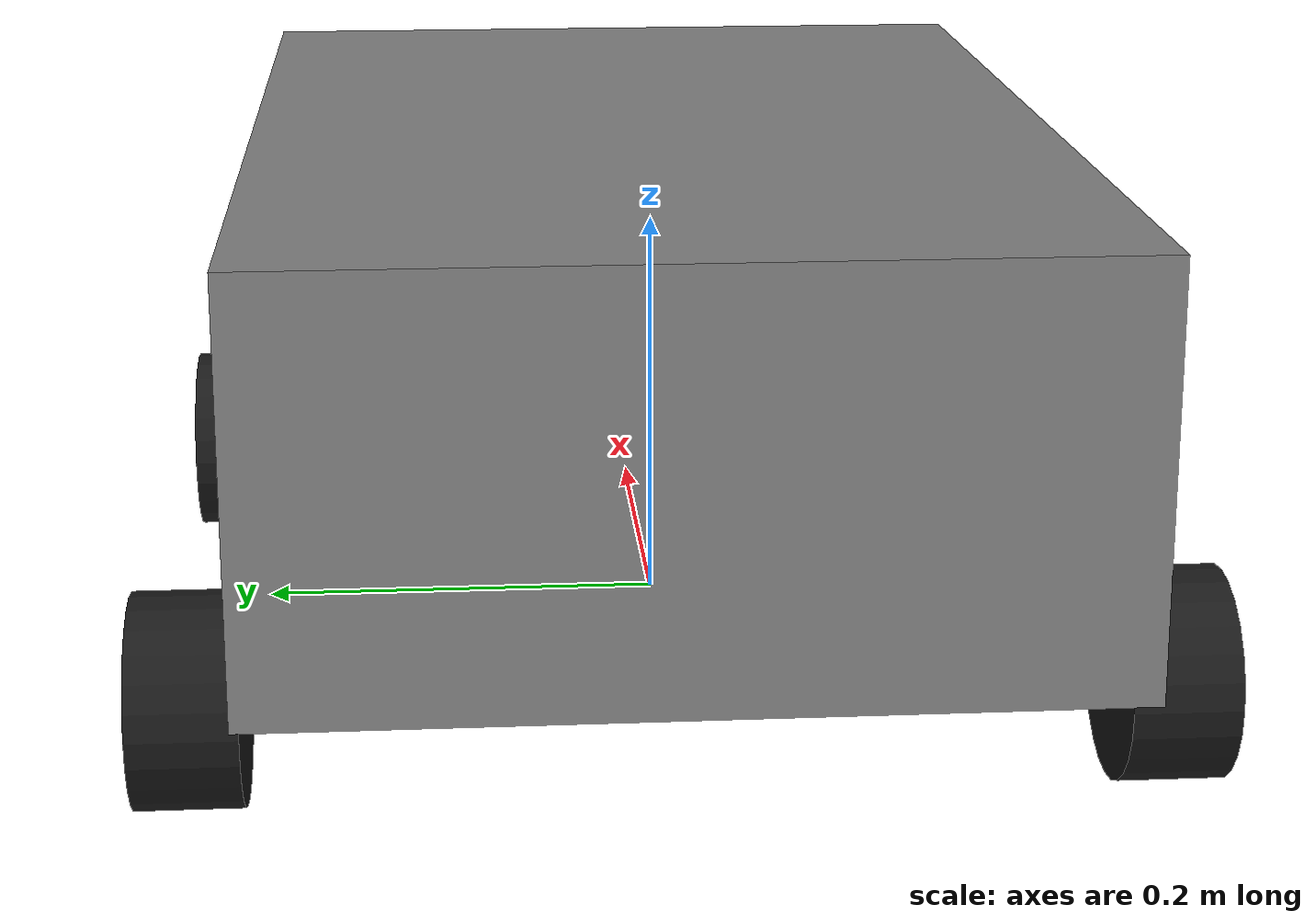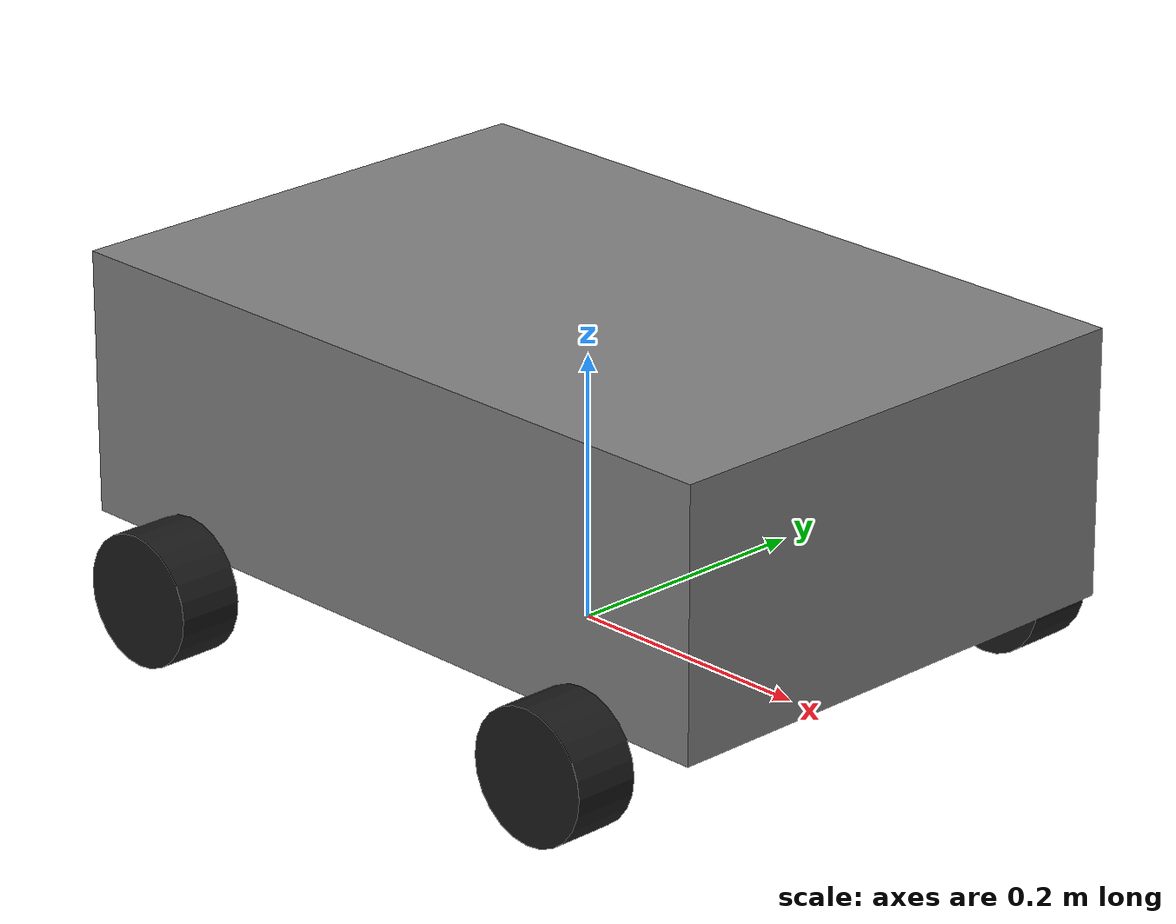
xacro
<?xml version="1.0"?>
<robot xmlns:xacro="http://www.ros.org/wiki/xacro" name="mecanumbot">

    <xacro:include filename="common_properties.xacro"/>
    <xacro:include filename="mecanumbot_base.xacro"/>
    <xacro:include filename="mecanumbot_gazebo.xacro"/>
    <xacro:include filename="ros2_control_gazebo.xacro"/>
</robot>

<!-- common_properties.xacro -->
<robot xmlns:xacro="http://www.ros.org/wiki/xacro" >

    <material name="darkgrey">
        <color rgba="0.1 0.1 0.1 1.0" />
    </material>

    <material name="grey">
        <color rgba="0.5 0.5 0.5 1" />
    </material>

    <material name="blue">
        <color rgba="0.0 0.0 0.8 1.0" />
    </material>

    <material name="yellow">
        <color rgba="0.8 0.8 0.0 1.0" />
    </material>

    <material name="black">
        <color rgba="0.15 0.15 0.15 1.0" />
    </material>

    <material name="light_grey">
        <color rgba="0.4 0.4 0.4 1.0" />
    </material>

    <xacro:property name="M_PI" value="3.1415926535897931" />
    <xacro:property name="M_PI_2" value="1.570796327" />
    <xacro:property name="DEG_TO_RAD" value="0.017453293" />

    <xacro:property name="base_size_x" value="0.6" />
    <xacro:property name="base_size_y" value="0.40" />
    <xacro:property name="base_size_z" value="0.2" />
    <xacro:property name="base_mass" value="1.000" />

    <xacro:property name="wheel_radius" value="0.050" />
    <xacro:property name="wheel_width" value="0.0505" />
    <xacro:property name="wheel_offset_x" value="0.2"/>
    <xacro:property name="wheel_offset_y" value="${(wheel_width + base_size_y) / 2}"/>
    <xacro:property name="wheel_offset_z" value="0"/>
    <xacro:property name="wheel_mass" value="0.500"/>

    <xacro:macro name="box_inertia" params="m x y z">
        <inertia ixx="${m*(y*y+z*z)/12}" ixy="0" ixz="0"
                 iyy="${m*(x*x+z*z)/12}" iyz="0"
                 izz="${m*(x*x+z*z)/12}" />
    </xacro:macro>
    <xacro:macro name="cylinder_inertia" params="m r w">
        <inertia ixx="${m*(3*r*r+w*w)/12}" ixy="0" ixz="0"
                 iyy="${m*(3*r*r+w*w)/12}" iyz="0"
                 izz="${m*r*r/2}" />
    </xacro:macro>
</robot>

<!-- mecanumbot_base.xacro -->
<robot xmlns:xacro="http://www.ros.org/wiki/xacro">
    <!-- Base Link -->
    <link name="base_footprint" />

    <joint name="base_joint" type="fixed">
        <parent link="base_footprint" />
        <child link="base_link" />
        <origin xyz="0 0 ${wheel_radius/2}" rpy="0 0 0" />
    </joint>

    <link name="base_link">
        <visual>
          <origin xyz="0 0 ${base_size_z/2 + wheel_radius/2}" rpy="0 0 0" />
          <geometry>
            <box size="${base_size_x} ${base_size_y} ${base_size_z}" />
          </geometry>
          <material name="grey" />
        </visual>
        <collision>
          <origin xyz="0 0 ${base_size_z/2 + wheel_radius/2}" rpy="0 0 0" />
          <geometry>
            <box size="${base_size_x} ${base_size_y} ${base_size_z}" />
          </geometry>
        </collision>
        <inertial>
          <origin xyz="0 0 ${base_size_z/2 + wheel_radius/2}" rpy="0 0 0"/>
          <mass value="${base_mass}"/>
          <xacro:box_inertia m="${base_mass}" x="${base_size_x}" y="${base_size_y}" z="${base_size_z}"/>
        </inertial>
    </link>

    <!-- Forward lelf wheel -->

    <joint name="fl_wheel_joint" type="continuous">
        <parent link="base_link"/>
        <child link="fl_wheel_link"/>
        <origin xyz="${wheel_offset_x} ${wheel_offset_y} ${wheel_offset_z}" rpy="0 0 ${M_PI/2}"/>
        <axis xyz="1 0 0" rpy="0 0 0"/>
    </joint>

  <link name="fl_wheel_link">
        <visual>
          <origin xyz="0 0 0" rpy="0 ${-M_PI/2} 0" />
          <geometry>
            <cylinder radius="${wheel_radius}" length="${wheel_width}" />
          </geometry>
          <material name="darkgrey" />
        </visual>
        <collision>
          <origin xyz="0 0 0" rpy="0 ${-M_PI/2} 0" />
          <geometry>
            <cylinder radius="${wheel_radius}" length="${wheel_width}" />
          </geometry>
        </collision>
        <inertial>
          <origin xyz="0 0 0" rpy="0 ${-M_PI/2} 0" />
          <mass value="${wheel_mass}" />
          <xacro:cylinder_inertia m="${wheel_mass}" r="${wheel_radius}" w="${wheel_width}" />
        </inertial>
   </link>

       <!-- Forward right wheel -->

  <joint name="fr_wheel_joint" type="continuous">
        <parent link="base_link"/>
        <child link="fr_wheel_link"/>
        <origin xyz="${wheel_offset_x} ${-wheel_offset_y} ${wheel_offset_z}" rpy="0 0 ${-M_PI/2}" />
        <axis xyz="-1 0 0" rpy="0 0 0"/>
  </joint>

  <link name="fr_wheel_link">
        <visual>
          <origin xyz="0 0 0" rpy="0 ${M_PI/2} 0" />
          <geometry>
            <cylinder radius="${wheel_radius}" length="${wheel_width}" />
          </geometry>
          <material name="darkgrey" />
        </visual>
        <collision>
          <origin xyz="0 0 0" rpy="0 ${M_PI/2} 0" />
          <geometry>
            <cylinder radius="${wheel_radius}" length="${wheel_width}" />
          </geometry>
        </collision>
        <inertial>
          <origin xyz="0 0 0" rpy="0 ${M_PI/2} 0" />
          <mass value="${wheel_mass}" />
          <xacro:cylinder_inertia m="${wheel_mass}" r="${wheel_radius}" w="${wheel_width}" />
        </inertial>
  </link>
   <!-- rear left wheel -->

   <joint name="rl_wheel_joint" type="continuous">
    <parent link="base_link"/>
    <child link="rl_wheel_link"/>
    <origin xyz="${-wheel_offset_x} ${wheel_offset_y} ${wheel_offset_z}" rpy="0 0 ${M_PI/2}" />
    <axis xyz="1 0 0" rpy="0 0 0"/>
</joint>

<link name="rl_wheel_link">
    <visual>
      <origin xyz="0 0 0" rpy="0 ${-M_PI/2} 0" />
      <geometry>
        <cylinder radius="${wheel_radius}" length="${wheel_width}" />
      </geometry>
      <material name="darkgrey" />
    </visual>
    <collision>
      <origin xyz="0 0 0" rpy="0 ${-M_PI/2} 0" />
      <geometry>
        <cylinder radius="${wheel_radius}" length="${wheel_width}" />
      </geometry>
    </collision>
    <inertial>
      <origin xyz="0 0 0" rpy="0 ${-M_PI/2} 0" />
      <mass value="${wheel_mass}" />
      <xacro:cylinder_inertia m="${wheel_mass}" r="${wheel_radius}" w="${wheel_width}" />
    </inertial>
</link>

    <!-- rear right wheel-->

    <joint name="rr_wheel_joint" type="continuous">
      <parent link="base_link"/>
      <child link="rr_wheel_link"/>
      <origin xyz="${-wheel_offset_x} ${-wheel_offset_y} ${wheel_offset_z}" rpy="0 0 ${-M_PI/2}" />
      <axis xyz="-1 0 0" rpy="0 0 0"/>
  </joint>

  <link name="rr_wheel_link">
      <visual>
        <origin xyz="0 0 0" rpy="0 ${M_PI/2} 0" />
        <geometry>
          <cylinder radius="${wheel_radius}" length="${wheel_width}" />
        </geometry>
        <material name="darkgrey" />
      </visual>
      <collision>
        <origin xyz="0 0 0" rpy="0 ${M_PI/2} 0" />
        <geometry>
          <cylinder radius="${wheel_radius}" length="${wheel_width}" />
        </geometry>
      </collision>
      <inertial>
        <origin xyz="0 0 0" rpy="0 ${M_PI/2} 0" />
        <mass value="${wheel_mass}" />
        <xacro:cylinder_inertia m="${wheel_mass}" r="${wheel_radius}" w="${wheel_width}" />
      </inertial>
  </link>
</robot>
